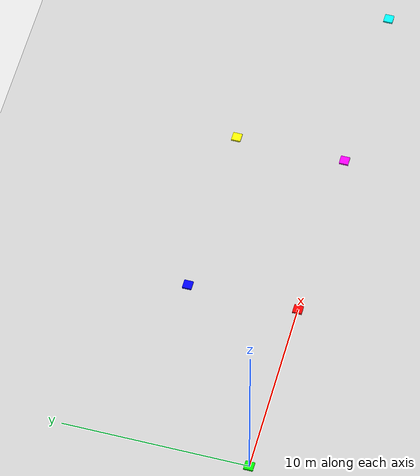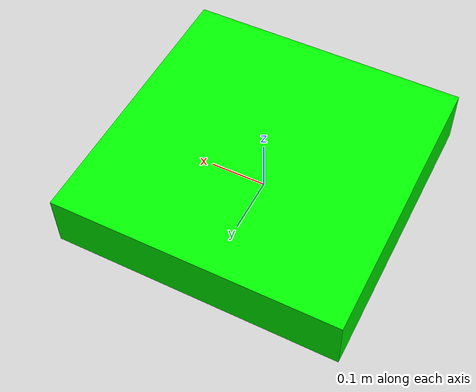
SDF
<?xml version="1.0" ?>
<sdf version="1.6">
  <world name="zigzag_world">
    <gravity>0 0 -9.81</gravity>

    <include>
      <uri>model://sun</uri>
    </include>

    <include>
      <uri>model://ground_plane</uri>
    </include>

    <model name="wp_marker_0">
      <static>true</static>
      <pose>0 0 0.05 0 0 0</pose>
      <link name="link">
        <visual name="visual">
          <geometry><box><size>0.5 0.5 0.1</size></box></geometry>
          <material><ambient>0 1 0 1</ambient><diffuse>0 1 0 1</diffuse></material>
        </visual>
        <collision name="collision">
          <geometry><box><size>0.5 0.5 0.1</size></box></geometry>
        </collision>
      </link>
    </model>

    <model name="wp_marker_1">
      <static>true</static>
      <pose>10 0 0.05 0 0 0</pose>
      <link name="link">
        <visual name="visual">
          <geometry><box><size>0.5 0.5 0.1</size></box></geometry>
          <material><ambient>1 0 0 1</ambient><diffuse>1 0 0 1</diffuse></material>
        </visual>
        <collision name="collision">
          <geometry><box><size>0.5 0.5 0.1</size></box></geometry>
        </collision>
      </link>
    </model>

    <model name="wp_marker_2">
      <static>true</static>
      <pose>10 6 0.05 0 0 0</pose>
      <link name="link">
        <visual name="visual">
          <geometry><box><size>0.5 0.5 0.1</size></box></geometry>
          <material><ambient>0 0 1 1</ambient><diffuse>0 0 1 1</diffuse></material>
        </visual>
        <collision name="collision">
          <geometry><box><size>0.5 0.5 0.1</size></box></geometry>
        </collision>
      </link>
    </model>

    <model name="wp_marker_3">
      <static>true</static>
      <pose>20 6 0.05 0 0 0</pose>
      <link name="link">
        <visual name="visual">
          <geometry><box><size>0.5 0.5 0.1</size></box></geometry>
          <material><ambient>1 1 0 1</ambient><diffuse>1 1 0 1</diffuse></material>
        </visual>
        <collision name="collision">
          <geometry><box><size>0.5 0.5 0.1</size></box></geometry>
        </collision>
      </link>
    </model>

    <model name="wp_marker_4">
      <static>true</static>
      <pose>20 0 0.05 0 0 0</pose>
      <link name="link">
        <visual name="visual">
          <geometry><box><size>0.5 0.5 0.1</size></box></geometry>
          <material><ambient>1 0 1 1</ambient><diffuse>1 0 1 1</diffuse></material>
        </visual>
        <collision name="collision">
          <geometry><box><size>0.5 0.5 0.1</size></box></geometry>
        </collision>
      </link>
    </model>

    <model name="wp_marker_5">
      <static>true</static>
      <pose>30 0 0.05 0 0 0</pose>
      <link name="link">
        <visual name="visual">
          <geometry><box><size>0.5 0.5 0.1</size></box></geometry>
          <material><ambient>0 1 1 1</ambient><diffuse>0 1 1 1</diffuse></material>
        </visual>
        <collision name="collision">
          <geometry><box><size>0.5 0.5 0.1</size></box></geometry>
        </collision>
      </link>
    </model>
  </world>
</sdf>
